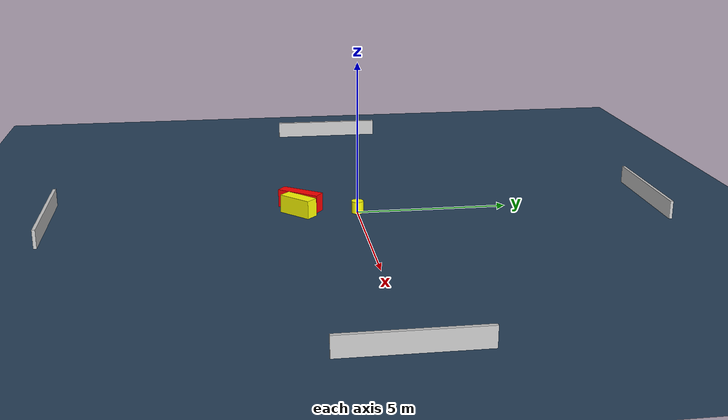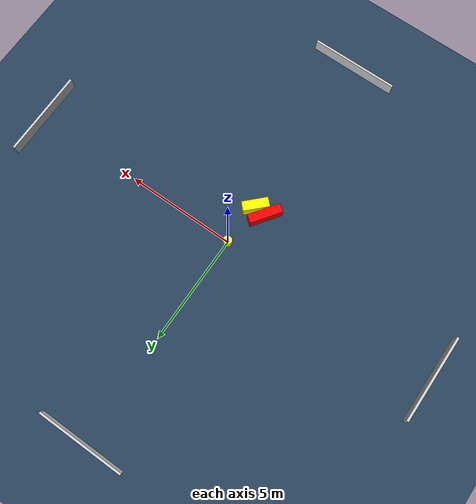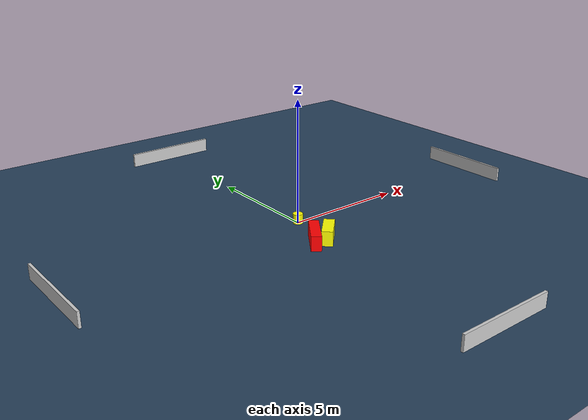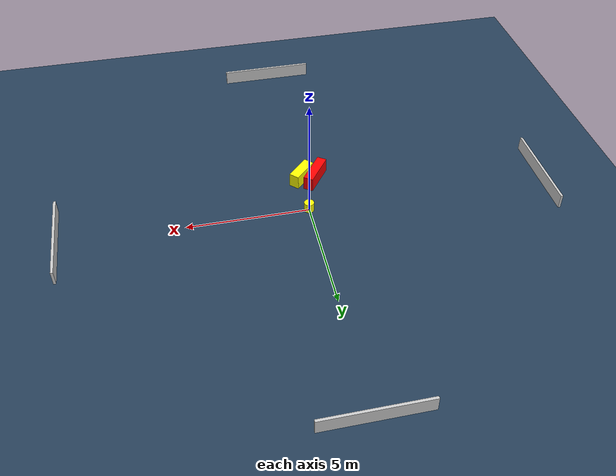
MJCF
<?xml version="1.0" ?>
<mujoco model="generated_environment">
  <option timestep="0.01" integrator="RK4" cone="elliptic"/>
  <default>
    <geom density="1"/>
  </default>
  <asset>
    <texture builtin="gradient" height="3072" name="skybox" rgb1="0.3 0.5 0.7" rgb2="0 0 0" type="skybox" width="512"/>
    <texture builtin="checker" height="300" name="groundplane" rgb1="0.2 0.3 0.4" rgb2="0.1 0.2 0.3" type="2d" width="300"/>
    <material name="groundplane" reflectance="0.2" texrepeat="5 5" texture="groundplane"/>
  </asset>
  <worldbody>
    <light dir="0 0 -1" directional="true" pos="0 0 1.5"/>
    <geom condim="3" friction="0.5 0.005 0.001" material="groundplane" name="floor" pos="0 0 0" size="0 0 0.05" type="plane"/>
    <body name="walls">
      <geom name="wall_1" condim="4" pos="-10.0 0.0 0.3" rgba="0.800000011920929 0.800000011920929 0.800000011920929 1.0" size="0.05 2.0 0.3" type="box"/>
      <geom name="wall_2" condim="4" pos="10.0 0.0 0.3" rgba="0.800000011920929 0.800000011920929 0.800000011920929 1.0" size="0.05 2.0 0.3" type="box"/>
      <geom name="wall_3" condim="4" pos="0.0 -10.0 0.3" rgba="0.800000011920929 0.800000011920929 0.800000011920929 1.0" size="2.0 0.05 0.3" type="box"/>
      <geom name="wall_4" condim="4" pos="0.0 10.0 0.3" rgba="0.800000011920929 0.800000011920929 0.800000011920929 1.0" size="2.0 0.05 0.3" type="box"/>
    </body>
    <body name="robot">
      <joint name="joint_x" type="slide" pos="0 0 0" axis="1 0 0"/>
      <joint name="joint_y" type="slide" pos="0 0 0" axis="0 1 0"/>
      <geom name="robot" type="cylinder" pos="0.0 0.0 0.2" size="0.2 0.2 0.0" mass="5.0" friction="1.0 0.005 0.0001" condim="4" rgba="1.0 1.0 0.0 1.0"/>
    </body>
    <body name="obstacle_1_movable">
      <geom name="obstacle_1_movable" condim="4" pos="-0.09405146812256955 -1.944897568783183 0.3" euler="0 0 315.3992199241424" friction="0.0 0.005 0.001" rgba="1.0 1.0 0.0 1.0" size="0.2171989636030769 0.5857359761430625 0.3" type="box" mass="0.1"/>
      <joint type="free"/>
    </body>
    <body name="obstacle_2_static">
      <geom name="obstacle_2_static" condim="4" pos="-0.6554347500411681 -1.8351956673777614 0.3" euler="0 0 144.55679313169645" friction="0.0 0.005 0.001" rgba="1.0 0.0 0.0 1.0" size="0.20128498821561258 0.740850360005215 0.3" type="box"/>
    </body>
  </worldbody>
  <actuator>
    <motor name="actuator_x" joint="joint_x" gear="1" ctrlrange="-1 1"/>
    <motor name="actuator_y" joint="joint_y" gear="1" ctrlrange="-1 1"/>
  </actuator>
</mujoco>
